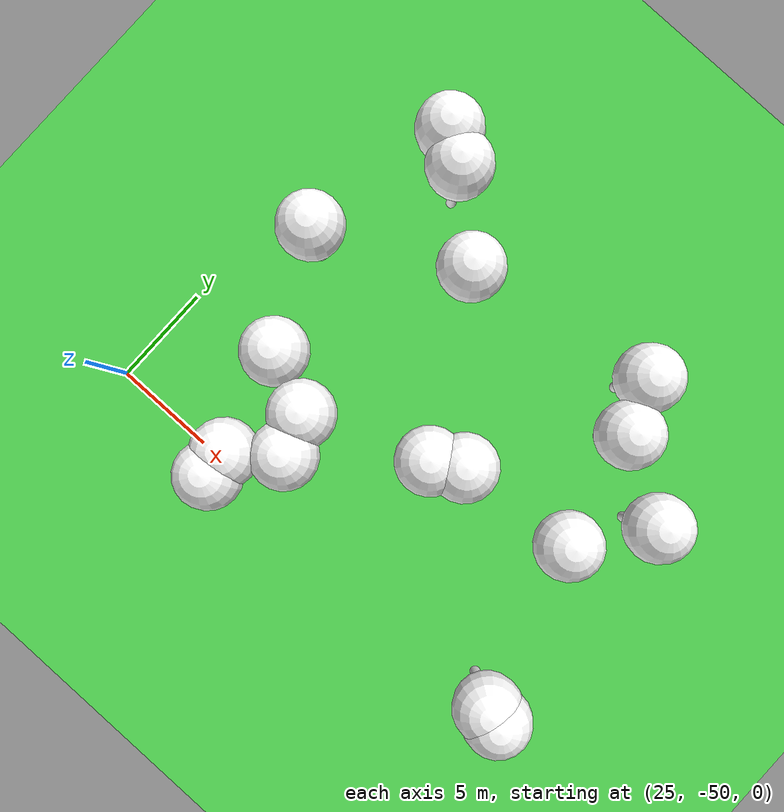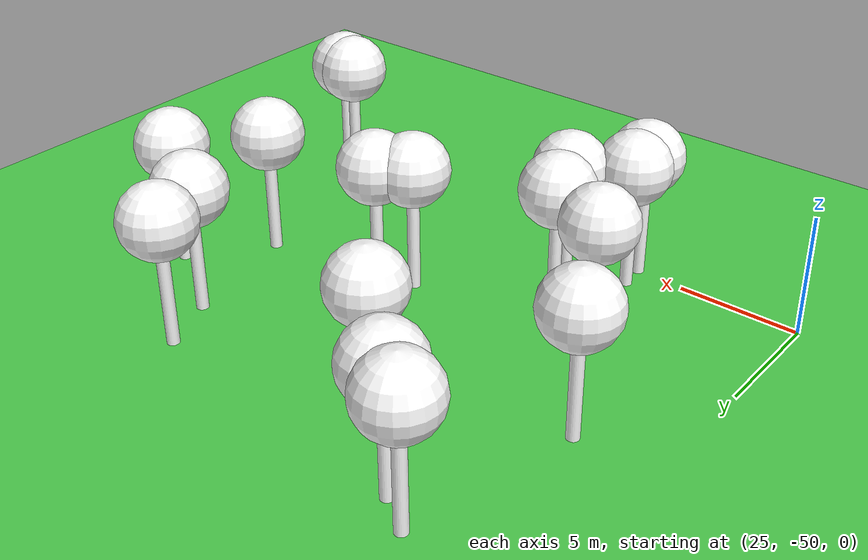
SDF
<sdf version="1.8">
 <world name="forest_world">
  <model name="tree_simple494">
   <static>1</static>
   <link name="link">
    <pose>0 0 0.1 0 -0 0</pose>
    <collision name="collision_trunk">
     <pose>0 0 2 0 -0 0</pose>
     <geometry><cylinder><radius>0.25</radius><length>4</length></cylinder></geometry>
    </collision>
    <collision name="collision_treetop">
     <pose>0 0 5.2 0 -0 0</pose>
     <geometry><sphere><radius>1.5</radius></sphere></geometry>
    </collision>
    <visual name="trunk_494">
     <pose>0 0 2 0 -0 0</pose>
     <geometry><cylinder><radius>0.25</radius><length>4</length></cylinder></geometry>
     <material>
      <ambient>0.5 0.5 0.5 1</ambient>
      <diffuse>1.0 1.0 1.0 1</diffuse>
      <specular>0.0 0.0 0.0 1</specular>
      <pbr>
       <metal>
        <albedo_map>file://textures/tree_simple_trunk.jpg</albedo_map>
        <metalness>0.0</metalness>
        <roughness>0.8</roughness>
       </metal>
      </pbr>
     </material>
    </visual>
    <visual name="treetop_494">
     <pose>0 0 5.2 0 -0 0</pose>
     <geometry><sphere><radius>1.5</radius></sphere></geometry>
     <material>
      <ambient>0.5 0.5 0.5 1</ambient>
      <diffuse>1.0 1.0 1.0 1</diffuse>
      <specular>0.0 0.0 0.0 1</specular>
      <pbr>
       <metal>
        <albedo_map>file://textures/tree_simple_treetop.jpg</albedo_map>
        <metalness>0.0</metalness>
        <roughness>0.9</roughness>
       </metal>
      </pbr>
     </material>
    </visual>
   </link>
   <pose>39.6521252177 -42.647901406 0 0 -0 0</pose>
  </model>
  <model name="tree_simple422">
   <static>1</static>
   <link name="link">
    <pose>0 0 0.1 0 -0 0</pose>
    <collision name="collision_trunk">
     <pose>0 0 2 0 -0 0</pose>
     <geometry><cylinder><radius>0.25</radius><length>4</length></cylinder></geometry>
    </collision>
    <collision name="collision_treetop">
     <pose>0 0 5.2 0 -0 0</pose>
     <geometry><sphere><radius>1.5</radius></sphere></geometry>
    </collision>
    <visual name="trunk_422">
     <pose>0 0 2 0 -0 0</pose>
     <geometry><cylinder><radius>0.25</radius><length>4</length></cylinder></geometry>
     <material>
      <ambient>0.5 0.5 0.5 1</ambient>
      <diffuse>1.0 1.0 1.0 1</diffuse>
      <specular>0.0 0.0 0.0 1</specular>
      <pbr>
       <metal>
        <albedo_map>file://textures/tree_simple_trunk.jpg</albedo_map>
        <metalness>0.0</metalness>
        <roughness>0.8</roughness>
       </metal>
      </pbr>
     </material>
    </visual>
    <visual name="treetop_422">
     <pose>0 0 5.2 0 -0 0</pose>
     <geometry><sphere><radius>1.5</radius></sphere></geometry>
     <material>
      <ambient>0.5 0.5 0.5 1</ambient>
      <diffuse>1.0 1.0 1.0 1</diffuse>
      <specular>0.0 0.0 0.0 1</specular>
      <pbr>
       <metal>
        <albedo_map>file://textures/tree_simple_treetop.jpg</albedo_map>
        <metalness>0.0</metalness>
        <roughness>0.9</roughness>
       </metal>
      </pbr>
     </material>
    </visual>
   </link>
   <pose>46.9340594409 -49.3003062786 0 0 -0 0</pose>
  </model>
  <model name="tree_simple406">
   <static>1</static>
   <link name="link">
    <pose>0 0 0.1 0 -0 0</pose>
    <collision name="collision_trunk">
     <pose>0 0 2 0 -0 0</pose>
     <geometry><cylinder><radius>0.25</radius><length>4</length></cylinder></geometry>
    </collision>
    <collision name="collision_treetop">
     <pose>0 0 5.2 0 -0 0</pose>
     <geometry><sphere><radius>1.5</radius></sphere></geometry>
    </collision>
    <visual name="trunk_406">
     <pose>0 0 2 0 -0 0</pose>
     <geometry><cylinder><radius>0.25</radius><length>4</length></cylinder></geometry>
     <material>
      <ambient>0.5 0.5 0.5 1</ambient>
      <diffuse>1.0 1.0 1.0 1</diffuse>
      <specular>0.0 0.0 0.0 1</specular>
      <pbr>
       <metal>
        <albedo_map>file://textures/tree_simple_trunk.jpg</albedo_map>
        <metalness>0.0</metalness>
        <roughness>0.8</roughness>
       </metal>
      </pbr>
     </material>
    </visual>
    <visual name="treetop_406">
     <pose>0 0 5.2 0 -0 0</pose>
     <geometry><sphere><radius>1.5</radius></sphere></geometry>
     <material>
      <ambient>0.5 0.5 0.5 1</ambient>
      <diffuse>1.0 1.0 1.0 1</diffuse>
      <specular>0.0 0.0 0.0 1</specular>
      <pbr>
       <metal>
        <albedo_map>file://textures/tree_simple_treetop.jpg</albedo_map>
        <metalness>0.0</metalness>
        <roughness>0.9</roughness>
       </metal>
      </pbr>
     </material>
    </visual>
   </link>
   <pose>31.8934217089 -48.8403630258 0 0 -0 0</pose>
  </model>
  <model name="tree_simple399">
   <static>1</static>
   <link name="link">
    <pose>0 0 0.1 0 -0 0</pose>
    <collision name="collision_trunk">
     <pose>0 0 2 0 -0 0</pose>
     <geometry><cylinder><radius>0.25</radius><length>4</length></cylinder></geometry>
    </collision>
    <collision name="collision_treetop">
     <pose>0 0 5.2 0 -0 0</pose>
     <geometry><sphere><radius>1.5</radius></sphere></geometry>
    </collision>
    <visual name="trunk_399">
     <pose>0 0 2 0 -0 0</pose>
     <geometry><cylinder><radius>0.25</radius><length>4</length></cylinder></geometry>
     <material>
      <ambient>0.5 0.5 0.5 1</ambient>
      <diffuse>1.0 1.0 1.0 1</diffuse>
      <specular>0.0 0.0 0.0 1</specular>
      <pbr>
       <metal>
        <albedo_map>file://textures/tree_simple_trunk.jpg</albedo_map>
        <metalness>0.0</metalness>
        <roughness>0.8</roughness>
       </metal>
      </pbr>
     </material>
    </visual>
    <visual name="treetop_399">
     <pose>0 0 5.2 0 -0 0</pose>
     <geometry><sphere><radius>1.5</radius></sphere></geometry>
     <material>
      <ambient>0.5 0.5 0.5 1</ambient>
      <diffuse>1.0 1.0 1.0 1</diffuse>
      <specular>0.0 0.0 0.0 1</specular>
      <pbr>
       <metal>
        <albedo_map>file://textures/tree_simple_treetop.jpg</albedo_map>
        <metalness>0.0</metalness>
        <roughness>0.9</roughness>
       </metal>
      </pbr>
     </material>
    </visual>
   </link>
   <pose>28.1463540184 -39.4724503771 0 0 -0 0</pose>
  </model>
  <model name="tree_simple362">
   <static>1</static>
   <link name="link">
    <pose>0 0 0.1 0 -0 0</pose>
    <collision name="collision_trunk">
     <pose>0 0 2 0 -0 0</pose>
     <geometry><cylinder><radius>0.25</radius><length>4</length></cylinder></geometry>
    </collision>
    <collision name="collision_treetop">
     <pose>0 0 5.2 0 -0 0</pose>
     <geometry><sphere><radius>1.5</radius></sphere></geometry>
    </collision>
    <visual name="trunk_362">
     <pose>0 0 2 0 -0 0</pose>
     <geometry><cylinder><radius>0.25</radius><length>4</length></cylinder></geometry>
     <material>
      <ambient>0.5 0.5 0.5 1</ambient>
      <diffuse>1.0 1.0 1.0 1</diffuse>
      <specular>0.0 0.0 0.0 1</specular>
      <pbr>
       <metal>
        <albedo_map>file://textures/tree_simple_trunk.jpg</albedo_map>
        <metalness>0.0</metalness>
        <roughness>0.8</roughness>
       </metal>
      </pbr>
     </material>
    </visual>
    <visual name="treetop_362">
     <pose>0 0 5.2 0 -0 0</pose>
     <geometry><sphere><radius>1.5</radius></sphere></geometry>
     <material>
      <ambient>0.5 0.5 0.5 1</ambient>
      <diffuse>1.0 1.0 1.0 1</diffuse>
      <specular>0.0 0.0 0.0 1</specular>
      <pbr>
       <metal>
        <albedo_map>file://textures/tree_simple_treetop.jpg</albedo_map>
        <metalness>0.0</metalness>
        <roughness>0.9</roughness>
       </metal>
      </pbr>
     </material>
    </visual>
   </link>
   <pose>44.985496552 -42.1503793978 0 0 -0 0</pose>
  </model>
  <model name="tree_simple300">
   <static>1</static>
   <link name="link">
    <pose>0 0 0.1 0 -0 0</pose>
    <collision name="collision_trunk">
     <pose>0 0 2 0 -0 0</pose>
     <geometry><cylinder><radius>0.25</radius><length>4</length></cylinder></geometry>
    </collision>
    <collision name="collision_treetop">
     <pose>0 0 5.2 0 -0 0</pose>
     <geometry><sphere><radius>1.5</radius></sphere></geometry>
    </collision>
    <visual name="trunk_300">
     <pose>0 0 2 0 -0 0</pose>
     <geometry><cylinder><radius>0.25</radius><length>4</length></cylinder></geometry>
     <material>
      <ambient>0.5 0.5 0.5 1</ambient>
      <diffuse>1.0 1.0 1.0 1</diffuse>
      <specular>0.0 0.0 0.0 1</specular>
      <pbr>
       <metal>
        <albedo_map>file://textures/tree_simple_trunk.jpg</albedo_map>
        <metalness>0.0</metalness>
        <roughness>0.8</roughness>
       </metal>
      </pbr>
     </material>
    </visual>
    <visual name="treetop_300">
     <pose>0 0 5.2 0 -0 0</pose>
     <geometry><sphere><radius>1.5</radius></sphere></geometry>
     <material>
      <ambient>0.5 0.5 0.5 1</ambient>
      <diffuse>1.0 1.0 1.0 1</diffuse>
      <specular>0.0 0.0 0.0 1</specular>
      <pbr>
       <metal>
        <albedo_map>file://textures/tree_simple_treetop.jpg</albedo_map>
        <metalness>0.0</metalness>
        <roughness>0.9</roughness>
       </metal>
      </pbr>
     </material>
    </visual>
   </link>
   <pose>34.2893754597 -36.2522401159 0 0 -0 0</pose>
  </model>
  <model name="tree_simple280">
   <static>1</static>
   <link name="link">
    <pose>0 0 0.1 0 -0 0</pose>
    <collision name="collision_trunk">
     <pose>0 0 2 0 -0 0</pose>
     <geometry><cylinder><radius>0.25</radius><length>4</length></cylinder></geometry>
    </collision>
    <collision name="collision_treetop">
     <pose>0 0 5.2 0 -0 0</pose>
     <geometry><sphere><radius>1.5</radius></sphere></geometry>
    </collision>
    <visual name="trunk_280">
     <pose>0 0 2 0 -0 0</pose>
     <geometry><cylinder><radius>0.25</radius><length>4</length></cylinder></geometry>
     <material>
      <ambient>0.5 0.5 0.5 1</ambient>
      <diffuse>1.0 1.0 1.0 1</diffuse>
      <specular>0.0 0.0 0.0 1</specular>
      <pbr>
       <metal>
        <albedo_map>file://textures/tree_simple_trunk.jpg</albedo_map>
        <metalness>0.0</metalness>
        <roughness>0.8</roughness>
       </metal>
      </pbr>
     </material>
    </visual>
    <visual name="treetop_280">
     <pose>0 0 5.2 0 -0 0</pose>
     <geometry><sphere><radius>1.5</radius></sphere></geometry>
     <material>
      <ambient>0.5 0.5 0.5 1</ambient>
      <diffuse>1.0 1.0 1.0 1</diffuse>
      <specular>0.0 0.0 0.0 1</specular>
      <pbr>
       <metal>
        <albedo_map>file://textures/tree_simple_treetop.jpg</albedo_map>
        <metalness>0.0</metalness>
        <roughness>0.9</roughness>
       </metal>
      </pbr>
     </material>
    </visual>
   </link>
   <pose>42.8499474232 -34.7520527621 0 0 -0 0</pose>
  </model>
  <model name="tree_simple261">
   <static>1</static>
   <link name="link">
    <pose>0 0 0.1 0 -0 0</pose>
    <collision name="collision_trunk">
     <pose>0 0 2 0 -0 0</pose>
     <geometry><cylinder><radius>0.25</radius><length>4</length></cylinder></geometry>
    </collision>
    <collision name="collision_treetop">
     <pose>0 0 5.2 0 -0 0</pose>
     <geometry><sphere><radius>1.5</radius></sphere></geometry>
    </collision>
    <visual name="trunk_261">
     <pose>0 0 2 0 -0 0</pose>
     <geometry><cylinder><radius>0.25</radius><length>4</length></cylinder></geometry>
     <material>
      <ambient>0.5 0.5 0.5 1</ambient>
      <diffuse>1.0 1.0 1.0 1</diffuse>
      <specular>0.0 0.0 0.0 1</specular>
      <pbr>
       <metal>
        <albedo_map>file://textures/tree_simple_trunk.jpg</albedo_map>
        <metalness>0.0</metalness>
        <roughness>0.8</roughness>
       </metal>
      </pbr>
     </material>
    </visual>
    <visual name="treetop_261">
     <pose>0 0 5.2 0 -0 0</pose>
     <geometry><sphere><radius>1.5</radius></sphere></geometry>
     <material>
      <ambient>0.5 0.5 0.5 1</ambient>
      <diffuse>1.0 1.0 1.0 1</diffuse>
      <specular>0.0 0.0 0.0 1</specular>
      <pbr>
       <metal>
        <albedo_map>file://textures/tree_simple_treetop.jpg</albedo_map>
        <metalness>0.0</metalness>
        <roughness>0.9</roughness>
       </metal>
      </pbr>
     </material>
    </visual>
   </link>
   <pose>33.7827414367 -47.2764136507 0 0 -0 0</pose>
  </model>
  <model name="tree_simple225">
   <static>1</static>
   <link name="link">
    <pose>0 0 0.1 0 -0 0</pose>
    <collision name="collision_trunk">
     <pose>0 0 2 0 -0 0</pose>
     <geometry><cylinder><radius>0.25</radius><length>4</length></cylinder></geometry>
    </collision>
    <collision name="collision_treetop">
     <pose>0 0 5.2 0 -0 0</pose>
     <geometry><sphere><radius>1.5</radius></sphere></geometry>
    </collision>
    <visual name="trunk_225">
     <pose>0 0 2 0 -0 0</pose>
     <geometry><cylinder><radius>0.25</radius><length>4</length></cylinder></geometry>
     <material>
      <ambient>0.5 0.5 0.5 1</ambient>
      <diffuse>1.0 1.0 1.0 1</diffuse>
      <specular>0.0 0.0 0.0 1</specular>
      <pbr>
       <metal>
        <albedo_map>file://textures/tree_simple_trunk.jpg</albedo_map>
        <metalness>0.0</metalness>
        <roughness>0.8</roughness>
       </metal>
      </pbr>
     </material>
    </visual>
    <visual name="treetop_225">
     <pose>0 0 5.2 0 -0 0</pose>
     <geometry><sphere><radius>1.5</radius></sphere></geometry>
     <material>
      <ambient>0.5 0.5 0.5 1</ambient>
      <diffuse>1.0 1.0 1.0 1</diffuse>
      <specular>0.0 0.0 0.0 1</specular>
      <pbr>
       <metal>
        <albedo_map>file://textures/tree_simple_treetop.jpg</albedo_map>
        <metalness>0.0</metalness>
        <roughness>0.9</roughness>
       </metal>
      </pbr>
     </material>
    </visual>
   </link>
   <pose>30.586439973 -44.3528824328 0 0 -0 0</pose>
  </model>
  <model name="tree_simple207">
   <static>1</static>
   <link name="link">
    <pose>0 0 0.1 0 -0 0</pose>
    <collision name="collision_trunk">
     <pose>0 0 2 0 -0 0</pose>
     <geometry><cylinder><radius>0.25</radius><length>4</length></cylinder></geometry>
    </collision>
    <collision name="collision_treetop">
     <pose>0 0 5.2 0 -0 0</pose>
     <geometry><sphere><radius>1.5</radius></sphere></geometry>
    </collision>
    <visual name="trunk_207">
     <pose>0 0 2 0 -0 0</pose>
     <geometry><cylinder><radius>0.25</radius><length>4</length></cylinder></geometry>
     <material>
      <ambient>0.5 0.5 0.5 1</ambient>
      <diffuse>1.0 1.0 1.0 1</diffuse>
      <specular>0.0 0.0 0.0 1</specular>
      <pbr>
       <metal>
        <albedo_map>file://textures/tree_simple_trunk.jpg</albedo_map>
        <metalness>0.0</metalness>
        <roughness>0.8</roughness>
       </metal>
      </pbr>
     </material>
    </visual>
    <visual name="treetop_207">
     <pose>0 0 5.2 0 -0 0</pose>
     <geometry><sphere><radius>1.5</radius></sphere></geometry>
     <material>
      <ambient>0.5 0.5 0.5 1</ambient>
      <diffuse>1.0 1.0 1.0 1</diffuse>
      <specular>0.0 0.0 0.0 1</specular>
      <pbr>
       <metal>
        <albedo_map>file://textures/tree_simple_treetop.jpg</albedo_map>
        <metalness>0.0</metalness>
        <roughness>0.9</roughness>
       </metal>
      </pbr>
     </material>
    </visual>
   </link>
   <pose>29.7171513821 -32.5331350523 0 0 -0 0</pose>
  </model>
  <model name="tree_simple202">
   <static>1</static>
   <link name="link">
    <pose>0 0 0.1 0 -0 0</pose>
    <collision name="collision_trunk">
     <pose>0 0 2 0 -0 0</pose>
     <geometry><cylinder><radius>0.25</radius><length>4</length></cylinder></geometry>
    </collision>
    <collision name="collision_treetop">
     <pose>0 0 5.2 0 -0 0</pose>
     <geometry><sphere><radius>1.5</radius></sphere></geometry>
    </collision>
    <visual name="trunk_202">
     <pose>0 0 2 0 -0 0</pose>
     <geometry><cylinder><radius>0.25</radius><length>4</length></cylinder></geometry>
     <material>
      <ambient>0.5 0.5 0.5 1</ambient>
      <diffuse>1.0 1.0 1.0 1</diffuse>
      <specular>0.0 0.0 0.0 1</specular>
      <pbr>
       <metal>
        <albedo_map>file://textures/tree_simple_trunk.jpg</albedo_map>
        <metalness>0.0</metalness>
        <roughness>0.8</roughness>
       </metal>
      </pbr>
     </material>
    </visual>
    <visual name="treetop_202">
     <pose>0 0 5.2 0 -0 0</pose>
     <geometry><sphere><radius>1.5</radius></sphere></geometry>
     <material>
      <ambient>0.5 0.5 0.5 1</ambient>
      <diffuse>1.0 1.0 1.0 1</diffuse>
      <specular>0.0 0.0 0.0 1</specular>
      <pbr>
       <metal>
        <albedo_map>file://textures/tree_simple_treetop.jpg</albedo_map>
        <metalness>0.0</metalness>
        <roughness>0.9</roughness>
       </metal>
      </pbr>
     </material>
    </visual>
   </link>
   <pose>33.1651643467 -45.5260416914 0 0 -0 0</pose>
  </model>
  <model name="tree_simple182">
   <static>1</static>
   <link name="link">
    <pose>0 0 0.1 0 -0 0</pose>
    <collision name="collision_trunk">
     <pose>0 0 2 0 -0 0</pose>
     <geometry><cylinder><radius>0.25</radius><length>4</length></cylinder></geometry>
    </collision>
    <collision name="collision_treetop">
     <pose>0 0 5.2 0 -0 0</pose>
     <geometry><sphere><radius>1.5</radius></sphere></geometry>
    </collision>
    <visual name="trunk_182">
     <pose>0 0 2 0 -0 0</pose>
     <geometry><cylinder><radius>0.25</radius><length>4</length></cylinder></geometry>
     <material>
      <ambient>0.5 0.5 0.5 1</ambient>
      <diffuse>1.0 1.0 1.0 1</diffuse>
      <specular>0.0 0.0 0.0 1</specular>
      <pbr>
       <metal>
        <albedo_map>file://textures/tree_simple_trunk.jpg</albedo_map>
        <metalness>0.0</metalness>
        <roughness>0.8</roughness>
       </metal>
      </pbr>
     </material>
    </visual>
    <visual name="treetop_182">
     <pose>0 0 5.2 0 -0 0</pose>
     <geometry><sphere><radius>1.5</radius></sphere></geometry>
     <material>
      <ambient>0.5 0.5 0.5 1</ambient>
      <diffuse>1.0 1.0 1.0 1</diffuse>
      <specular>0.0 0.0 0.0 1</specular>
      <pbr>
       <metal>
        <albedo_map>file://textures/tree_simple_treetop.jpg</albedo_map>
        <metalness>0.0</metalness>
        <roughness>0.9</roughness>
       </metal>
      </pbr>
     </material>
    </visual>
   </link>
   <pose>31.0475626231 -33.3896196972 0 0 -0 0</pose>
  </model>
  <model name="tree_simple173">
   <static>1</static>
   <link name="link">
    <pose>0 0 0.1 0 -0 0</pose>
    <collision name="collision_trunk">
     <pose>0 0 2 0 -0 0</pose>
     <geometry><cylinder><radius>0.25</radius><length>4</length></cylinder></geometry>
    </collision>
    <collision name="collision_treetop">
     <pose>0 0 5.2 0 -0 0</pose>
     <geometry><sphere><radius>1.5</radius></sphere></geometry>
    </collision>
    <visual name="trunk_173">
     <pose>0 0 2 0 -0 0</pose>
     <geometry><cylinder><radius>0.25</radius><length>4</length></cylinder></geometry>
     <material>
      <ambient>0.5 0.5 0.5 1</ambient>
      <diffuse>1.0 1.0 1.0 1</diffuse>
      <specular>0.0 0.0 0.0 1</specular>
      <pbr>
       <metal>
        <albedo_map>file://textures/tree_simple_trunk.jpg</albedo_map>
        <metalness>0.0</metalness>
        <roughness>0.8</roughness>
       </metal>
      </pbr>
     </material>
    </visual>
    <visual name="treetop_173">
     <pose>0 0 5.2 0 -0 0</pose>
     <geometry><sphere><radius>1.5</radius></sphere></geometry>
     <material>
      <ambient>0.5 0.5 0.5 1</ambient>
      <diffuse>1.0 1.0 1.0 1</diffuse>
      <specular>0.0 0.0 0.0 1</specular>
      <pbr>
       <metal>
        <albedo_map>file://textures/tree_simple_treetop.jpg</albedo_map>
        <metalness>0.0</metalness>
        <roughness>0.9</roughness>
       </metal>
      </pbr>
     </material>
    </visual>
   </link>
   <pose>43.8187371286 -37.037678565 0 0 -0 0</pose>
  </model>
  <model name="tree_simple136">
   <static>1</static>
   <link name="link">
    <pose>0 0 0.1 0 -0 0</pose>
    <collision name="collision_trunk">
     <pose>0 0 2 0 -0 0</pose>
     <geometry><cylinder><radius>0.25</radius><length>4</length></cylinder></geometry>
    </collision>
    <collision name="collision_treetop">
     <pose>0 0 5.2 0 -0 0</pose>
     <geometry><sphere><radius>1.5</radius></sphere></geometry>
    </collision>
    <visual name="trunk_136">
     <pose>0 0 2 0 -0 0</pose>
     <geometry><cylinder><radius>0.25</radius><length>4</length></cylinder></geometry>
     <material>
      <ambient>0.5 0.5 0.5 1</ambient>
      <diffuse>1.0 1.0 1.0 1</diffuse>
      <specular>0.0 0.0 0.0 1</specular>
      <pbr>
       <metal>
        <albedo_map>file://textures/tree_simple_trunk.jpg</albedo_map>
        <metalness>0.0</metalness>
        <roughness>0.8</roughness>
       </metal>
      </pbr>
     </material>
    </visual>
    <visual name="treetop_136">
     <pose>0 0 5.2 0 -0 0</pose>
     <geometry><sphere><radius>1.5</radius></sphere></geometry>
     <material>
      <ambient>0.5 0.5 0.5 1</ambient>
      <diffuse>1.0 1.0 1.0 1</diffuse>
      <specular>0.0 0.0 0.0 1</specular>
      <pbr>
       <metal>
        <albedo_map>file://textures/tree_simple_treetop.jpg</albedo_map>
        <metalness>0.0</metalness>
        <roughness>0.9</roughness>
       </metal>
      </pbr>
     </material>
    </visual>
   </link>
   <pose>47.5460904113 -49.4529023421 0 0 -0 0</pose>
  </model>
  <model name="tree_simple56">
   <static>1</static>
   <link name="link">
    <pose>0 0 0.1 0 -0 0</pose>
    <collision name="collision_trunk">
     <pose>0 0 2 0 -0 0</pose>
     <geometry><cylinder><radius>0.25</radius><length>4</length></cylinder></geometry>
    </collision>
    <collision name="collision_treetop">
     <pose>0 0 5.2 0 -0 0</pose>
     <geometry><sphere><radius>1.5</radius></sphere></geometry>
    </collision>
    <visual name="trunk_56">
     <pose>0 0 2 0 -0 0</pose>
     <geometry><cylinder><radius>0.25</radius><length>4</length></cylinder></geometry>
     <material>
      <ambient>0.5 0.5 0.5 1</ambient>
      <diffuse>1.0 1.0 1.0 1</diffuse>
      <specular>0.0 0.0 0.0 1</specular>
      <pbr>
       <metal>
        <albedo_map>file://textures/tree_simple_trunk.jpg</albedo_map>
        <metalness>0.0</metalness>
        <roughness>0.8</roughness>
       </metal>
      </pbr>
     </material>
    </visual>
    <visual name="treetop_56">
     <pose>0 0 5.2 0 -0 0</pose>
     <geometry><sphere><radius>1.5</radius></sphere></geometry>
     <material>
      <ambient>0.5 0.5 0.5 1</ambient>
      <diffuse>1.0 1.0 1.0 1</diffuse>
      <specular>0.0 0.0 0.0 1</specular>
      <pbr>
       <metal>
        <albedo_map>file://textures/tree_simple_treetop.jpg</albedo_map>
        <metalness>0.0</metalness>
        <roughness>0.9</roughness>
       </metal>
      </pbr>
     </material>
    </visual>
   </link>
   <pose>38.4020388854 -43.3995733347 0 0 -0 0</pose>
  </model>
  <model name="tree_simple16">
   <static>1</static>
   <link name="link">
    <pose>0 0 0.1 0 -0 0</pose>
    <collision name="collision_trunk">
     <pose>0 0 2 0 -0 0</pose>
     <geometry><cylinder><radius>0.25</radius><length>4</length></cylinder></geometry>
    </collision>
    <collision name="collision_treetop">
     <pose>0 0 5.2 0 -0 0</pose>
     <geometry><sphere><radius>1.5</radius></sphere></geometry>
    </collision>
    <visual name="trunk_16">
     <pose>0 0 2 0 -0 0</pose>
     <geometry><cylinder><radius>0.25</radius><length>4</length></cylinder></geometry>
     <material>
      <ambient>0.5 0.5 0.5 1</ambient>
      <diffuse>1.0 1.0 1.0 1</diffuse>
      <specular>0.0 0.0 0.0 1</specular>
      <pbr>
       <metal>
        <albedo_map>file://textures/tree_simple_trunk.jpg</albedo_map>
        <metalness>0.0</metalness>
        <roughness>0.8</roughness>
       </metal>
      </pbr>
     </material>
    </visual>
    <visual name="treetop_16">
     <pose>0 0 5.2 0 -0 0</pose>
     <geometry><sphere><radius>1.5</radius></sphere></geometry>
     <material>
      <ambient>0.5 0.5 0.5 1</ambient>
      <diffuse>1.0 1.0 1.0 1</diffuse>
      <specular>0.0 0.0 0.0 1</specular>
      <pbr>
       <metal>
        <albedo_map>file://textures/tree_simple_treetop.jpg</albedo_map>
        <metalness>0.0</metalness>
        <roughness>0.9</roughness>
       </metal>
      </pbr>
     </material>
    </visual>
   </link>
   <pose>32.0026070431 -49.9548957823 0 0 -0 0</pose>
  </model>
  <model name="tree_simple5">
   <static>1</static>
   <link name="link">
    <pose>0 0 0.1 0 -0 0</pose>
    <collision name="collision_trunk">
     <pose>0 0 2 0 -0 0</pose>
     <geometry><cylinder><radius>0.25</radius><length>4</length></cylinder></geometry>
    </collision>
    <collision name="collision_treetop">
     <pose>0 0 5.2 0 -0 0</pose>
     <geometry><sphere><radius>1.5</radius></sphere></geometry>
    </collision>
    <visual name="trunk_5">
     <pose>0 0 2 0 -0 0</pose>
     <geometry><cylinder><radius>0.25</radius><length>4</length></cylinder></geometry>
     <material>
      <ambient>0.5 0.5 0.5 1</ambient>
      <diffuse>1.0 1.0 1.0 1</diffuse>
      <specular>0.0 0.0 0.0 1</specular>
      <pbr>
       <metal>
        <albedo_map>file://textures/tree_simple_trunk.jpg</albedo_map>
        <metalness>0.0</metalness>
        <roughness>0.8</roughness>
       </metal>
      </pbr>
     </material>
    </visual>
    <visual name="treetop_5">
     <pose>0 0 5.2 0 -0 0</pose>
     <geometry><sphere><radius>1.5</radius></sphere></geometry>
     <material>
      <ambient>0.5 0.5 0.5 1</ambient>
      <diffuse>1.0 1.0 1.0 1</diffuse>
      <specular>0.0 0.0 0.0 1</specular>
      <pbr>
       <metal>
        <albedo_map>file://textures/tree_simple_treetop.jpg</albedo_map>
        <metalness>0.0</metalness>
        <roughness>0.9</roughness>
       </metal>
      </pbr>
     </material>
    </visual>
   </link>
   <pose>47.2513402204 -39.1195744198 0 0 -0 0</pose>
  </model>
  <model name="ground_plane">
   <static>true</static>
   <link name="link">
    <collision name="collision">
     <geometry><plane><normal>0 0 1</normal><size>250 250</size></plane></geometry>
     <surface><friction><ode><mu>1</mu><mu2>1</mu2></ode></friction></surface>
    </collision>
    <visual name="grass">
     <cast_shadows>false</cast_shadows>
     <geometry><mesh><uri>file://textures/grass_plane.dae</uri><scale>1 1 1</scale></mesh></geometry>
     <material>
      <ambient>0.2 0.6 0.2 1</ambient>
      <diffuse>0.3 0.8 0.3 1</diffuse>
      <specular>0.1 0.1 0.1 1</specular>
      <pbr>
       <metal>
        <albedo_map>file://textures/grass_seamless.jpg</albedo_map>
        <metalness>0.0</metalness>
        <roughness>0.9</roughness>
       </metal>
      </pbr>
     </material>
    </visual>
   </link>
  </model>
 </world>
</sdf>
